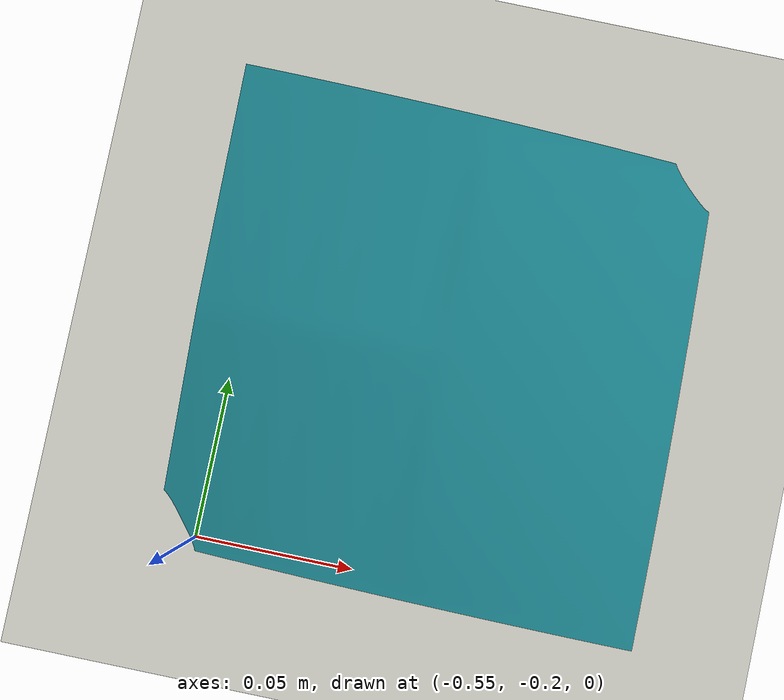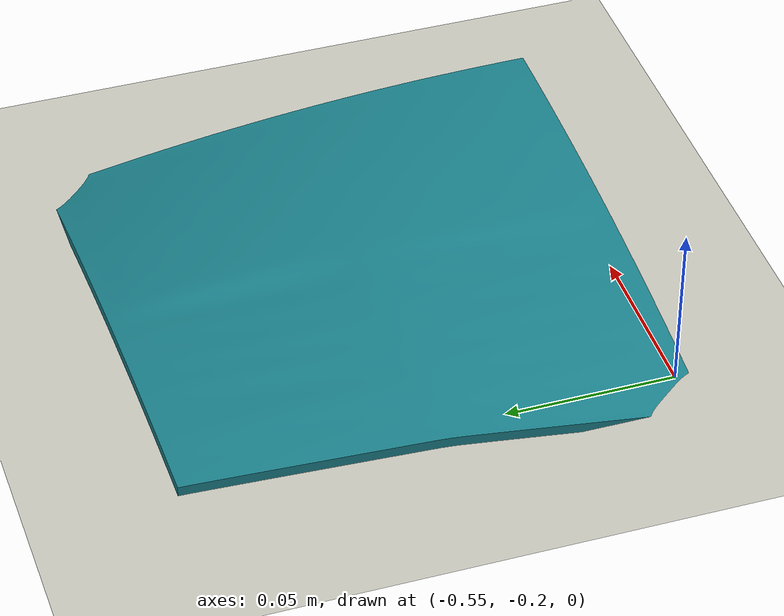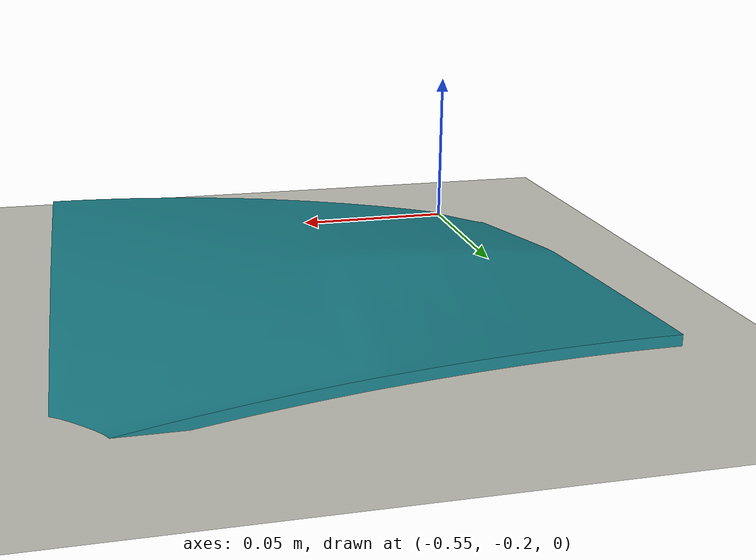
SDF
<?xml version="1.0" ?>
<sdf version="1.8">
  <world name="ur10e_gazebo_v2_fortress">
    <gravity>0 0 -9.81</gravity>
    <physics name="gazebo_v2_2khz" type="ignored">
      <max_step_size>0.0005</max_step_size>
      <real_time_factor>1.0</real_time_factor>
      <real_time_update_rate>2000</real_time_update_rate>
    </physics>

    <!-- Fortress-only systems.  Do not replace these with gz-sim-* plugins. -->
    <plugin filename="ignition-gazebo-physics-system" name="ignition::gazebo::systems::Physics"/>
    <plugin filename="ignition-gazebo-user-commands-system" name="ignition::gazebo::systems::UserCommands"/>
    <plugin filename="ignition-gazebo-scene-broadcaster-system" name="ignition::gazebo::systems::SceneBroadcaster"/>
    <plugin filename="ignition-gazebo-contact-system" name="ignition::gazebo::systems::Contact"/>
    <plugin filename="ignition-gazebo-forcetorque-system" name="ignition::gazebo::systems::ForceTorque"/>
    <plugin filename="ignition-gazebo-sensors-system" name="ignition::gazebo::systems::Sensors">
      <render_engine>ogre2</render_engine>
    </plugin>

    <light type="directional" name="sun">
      <cast_shadows>true</cast_shadows>
      <pose>0 0 6 0 0 0</pose>
      <diffuse>0.82 0.82 0.82 1</diffuse>
      <specular>0.18 0.18 0.18 1</specular>
      <direction>-0.4 0.2 -0.9</direction>
    </light>

    <model name="ground_plane">
      <static>true</static>
      <link name="link">
        <collision name="collision">
          <geometry><plane><normal>0 0 1</normal><size>4 4</size></plane></geometry>
        </collision>
        <visual name="visual">
          <geometry><plane><normal>0 0 1</normal><size>4 4</size></plane></geometry>
          <material>
            <ambient>0.78 0.78 0.74 1</ambient>
            <diffuse>0.78 0.78 0.74 1</diffuse>
          </material>
        </visual>
      </link>
    </model>

    <model name="step5_contact_surface">
      <static>true</static>
      <pose>-0.487795411149049 -0.12932679270060748 0.0040224195 0 0 0</pose>
      <link name="surface">
        <collision name="collision">
          <geometry><box><size>0.18 0.10 0.008044839</size></box></geometry>
          <surface>
            <contact><ode><kp>1000000</kp><kd>100</kd></ode></contact>
            <friction><ode><mu>1.0</mu><mu2>1.0</mu2></ode></friction>
          </surface>
        </collision>
        <visual name="real_surface_mesh_visual">
          <pose>0.0364678879 0.075 -0.0968663777 1.57079632679 0 0</pose>
          <geometry>
            <mesh>
              <uri>package://ur10e_example_controllers/meshes/contact_surface/two_piece_surface_smooth_v11_3mm_thick.stl</uri>
              <scale>0.001 0.001 0.001</scale>
            </mesh>
          </geometry>
          <material>
            <ambient>0.10 0.34 0.35 1</ambient>
            <diffuse>0.10 0.50 0.54 1</diffuse>
          </material>
        </visual>
      </link>
    </model>

    <!-- Four fixed observer sensors; their output is evidence only. -->
    <model name="gazebo_v2_observers">
      <static>true</static>
      <link name="wide_link">
        <pose>-1.35 -1.10 1.35 0 0.55 0.66</pose>
        <sensor name="wide" type="camera">
          <always_on>true</always_on><update_rate>10</update_rate>
          <topic>/ur10e/gazebo_v2/camera/wide</topic>
          <camera><horizontal_fov>1.20</horizontal_fov><image><width>1280</width><height>720</height><format>R8G8B8</format></image><clip><near>0.05</near><far>8</far></clip></camera>
        </sensor>
      </link>
      <link name="oblique_link">
        <pose>-1.10 0.72 0.92 0 0.46 -0.62</pose>
        <sensor name="oblique" type="camera">
          <always_on>true</always_on><update_rate>10</update_rate>
          <topic>/ur10e/gazebo_v2/camera/oblique</topic>
          <camera><horizontal_fov>1.05</horizontal_fov><image><width>1280</width><height>720</height><format>R8G8B8</format></image><clip><near>0.05</near><far>6</far></clip></camera>
        </sensor>
      </link>
      <link name="close_link">
        <pose>-0.82 -0.48 0.50 0 0.30 0.40</pose>
        <sensor name="close" type="camera">
          <always_on>true</always_on><update_rate>15</update_rate>
          <topic>/ur10e/gazebo_v2/camera/close</topic>
          <camera><horizontal_fov>0.88</horizontal_fov><image><width>1280</width><height>720</height><format>R8G8B8</format></image><clip><near>0.03</near><far>3</far></clip></camera>
        </sensor>
      </link>
      <link name="contact_link">
        <pose>-0.68 -0.28 0.20 0 0.20 0.28</pose>
        <sensor name="contact" type="camera">
          <always_on>true</always_on><update_rate>20</update_rate>
          <topic>/ur10e/gazebo_v2/camera/contact</topic>
          <camera><horizontal_fov>0.72</horizontal_fov><image><width>1280</width><height>720</height><format>R8G8B8</format></image><clip><near>0.02</near><far>1.5</far></clip></camera>
        </sensor>
      </link>
    </model>
  </world>
</sdf>
